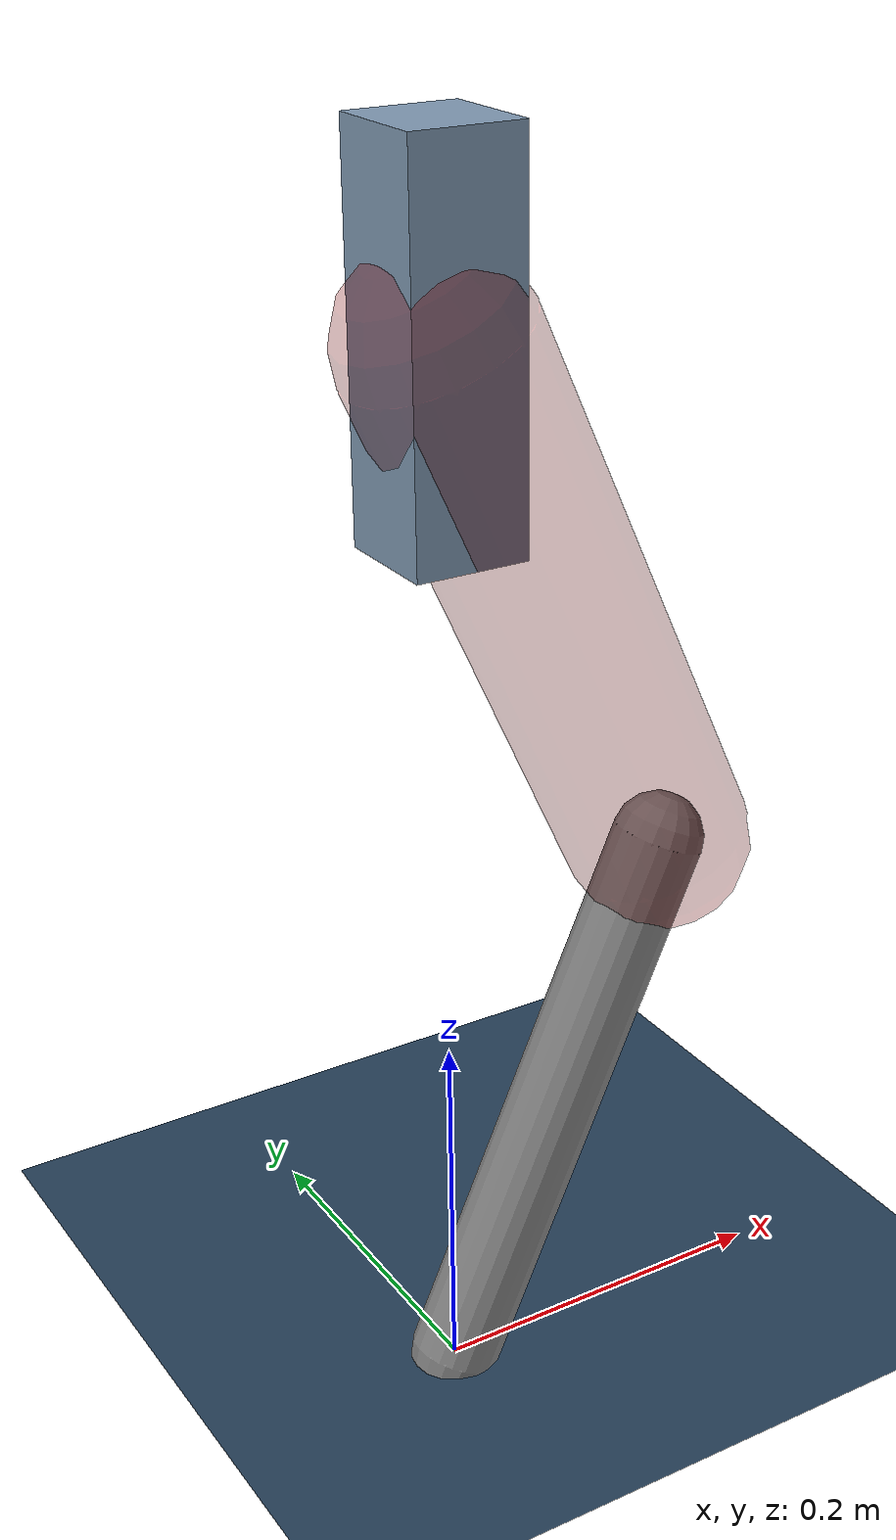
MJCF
<mujoco model="Hopper2D">
	<compiler inertiafromgeom="true" angle="radian" />
	<option timestep="0.001" integrator="implicit" cone="elliptic" solver="Newton" tolerance="1e-10" />

	<default>
		<geom contype="1" conaffinity="1" condim="3" friction="2 0.005 0.0001" solref="0.005 1" />
		<joint limited="true" damping="0.1" />
	</default>

	<asset>
		<texture name="skybox" type="skybox" builtin="gradient" rgb1=".4 .6 .8" rgb2="0 0 0" width="800" height="800" />
		<texture name="grid" type="2d" builtin="checker" rgb1=".1 .2 .3" rgb2=".2 .3 .4" width="300" height="300" mark="edge" markrgb=".2 .3 .4" />
		<material name="ground" texture="grid" texrepeat="1 1" texuniform="true" reflectance="0.1" />
		<material name="leg" rgba="0.5 0.6 0.7 1" />
	</asset>

	<worldbody>

		<geom name="floor" type="plane" size="5 5 0.25" material="ground" />

		<light directional="false" diffuse="0.8 0.8 0.8" specular="0.3 0.3 0.3" pos="0 0 2" dir="0 0 -1" />
		<light mode="targetbodycom" target="base" directional="false" diffuse="0.8 0.8 0.8" specular="0.3 0.3 0.3" pos="0 0 2" dir="0 0 -1" />

		<camera name="fixed" pos="0 -2 1" xyaxes="1 0 0 0 0 1" />
		<camera name="tracking" mode="trackcom" pos="0 -3 1" />

		<body name="root" pos="0 0 0.5782398822911987">
			<joint name="slide_x" type="slide" axis="1 0 0" range="-100 100" />
			<joint name="slide_z" type="slide" axis="0 0 1" range="0 10" />

			<body name="base" pos="0 0 0">
				<geom name="torso" type="box" size="0.03 0.03 0.1" mass="3.8360000000000003" material="leg" />

				<body name="link1" pos="0 0 0" euler="0 1.1402711550531723 0">
					<joint type="hinge" axis="0 -1 0" pos="0 0 0" name="hinge1" limited="true" range="-3.14 3.14" stiffness="0" damping="0.1" />
					<geom name="thigh" type="capsule" fromto="0 0 0 0.3141413249127628 0 0" size="0.05" rgba="0.5 0 0 0.3" mass="1.0271815772644595" />

					<body name="link2" pos="0.3141413249127628 0 0" euler="0 0.8515654957764515 0">
						<joint type="hinge" axis="0 -1 0" pos="0 0 0" name="hinge2" limited="true" range="-3.14 3.14" stiffness="0" damping="0.1" />
						<geom name="shank" type="capsule" fromto="0 0 0 0.320780608519756 0 0" size="0.025" mass="0.5003244868158048" />

					</body>
				</body>
			</body>
		</body>
	</worldbody>

	<actuator>
		<motor name="torque1" joint="hinge1" ctrlrange="-204.0849002237465 204.0849002237465" ctrllimited="true" gear="1" />
		<motor name="torque2" joint="hinge2" ctrlrange="-122.15422220406153 122.15422220406153" ctrllimited="true" gear="1" />
	</actuator>
</mujoco>
